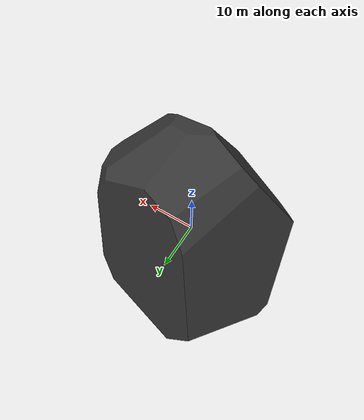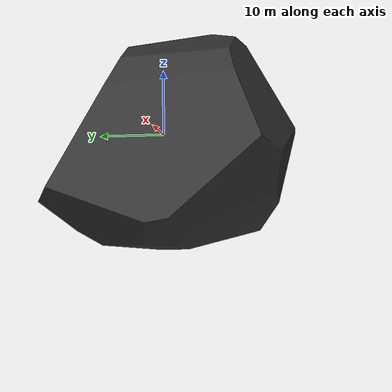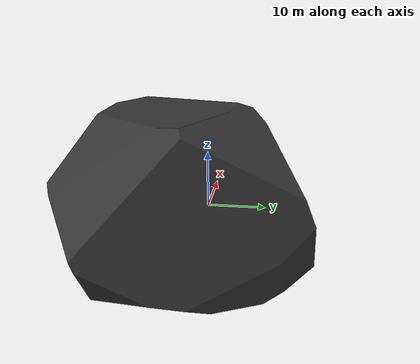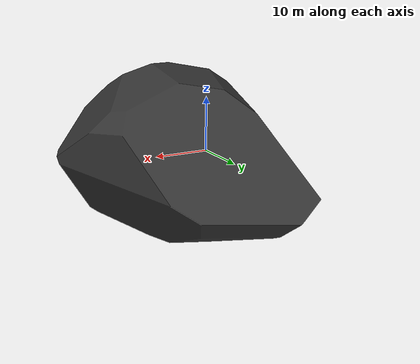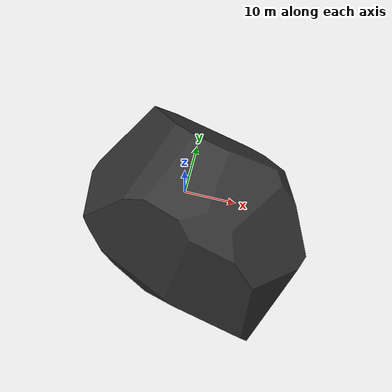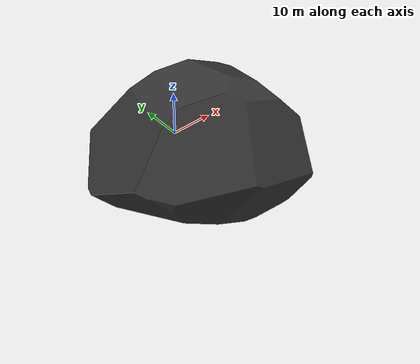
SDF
<?xml version="1.0"?>
<sdf version="1.5">
  <model name="aquabot_rock">
    <static>true</static>
    <link name="link">
      <collision name="collision">
        <pose>0 0 0 0 0 0</pose>
        <geometry>
          <mesh>
            <scale>20 20 20</scale>
            <uri>mesh/rock.dae</uri>
          </mesh>
        </geometry>
      </collision>
      <visual name="visual">
        <pose>0.0 0.0 0.0 0 0 0 </pose>
        <geometry>
          <mesh>
            <scale>20 20 20</scale>
            <uri>mesh/rock.dae</uri>
          </mesh>
        </geometry>
        <material> <!-- rock material -->
          <ambient>0.5 0.5 0.5 1</ambient>
          <diffuse>0.2 0.2 0.2 1</diffuse>
          <specular>0.4 0.4 0.4 1</specular>
          <emissive>0 0 0 1</emissive>
        </material>
      </visual>
    </link>
  </model>
</sdf>
